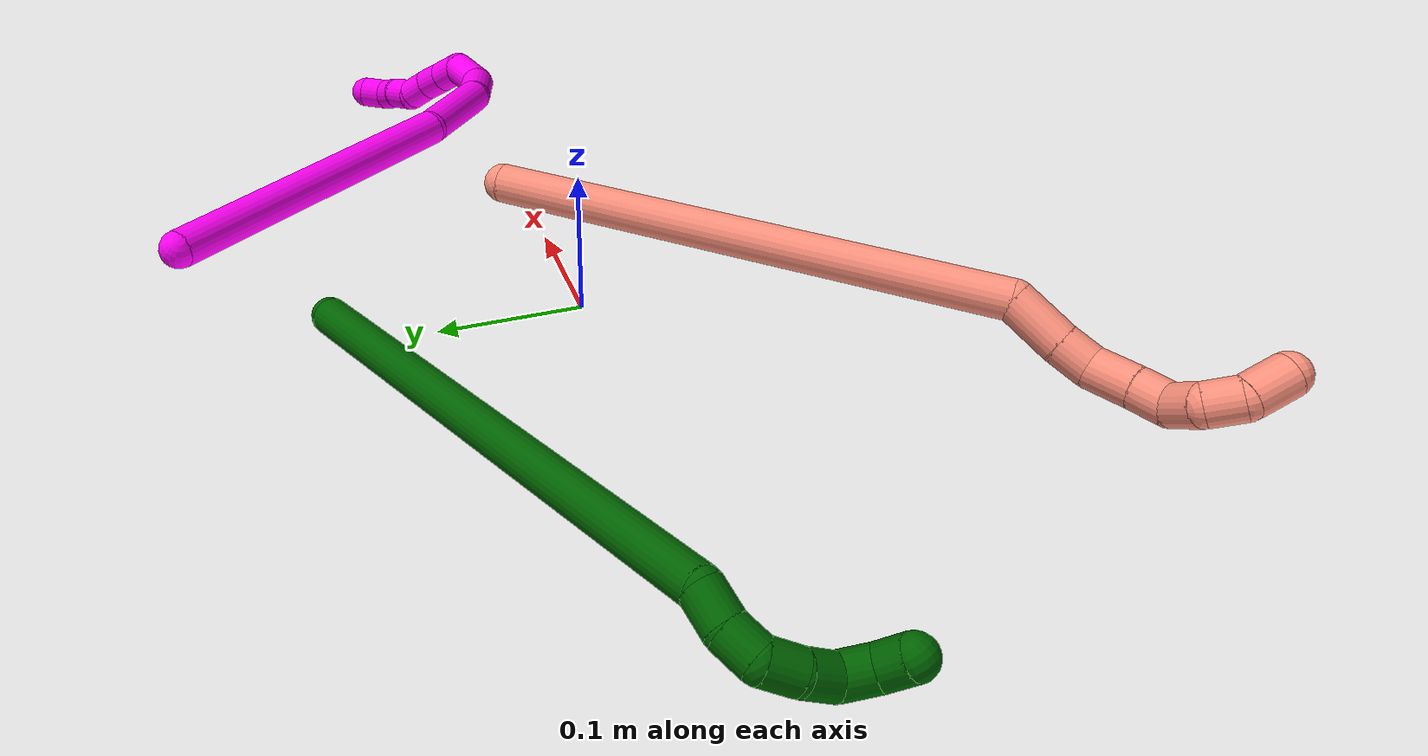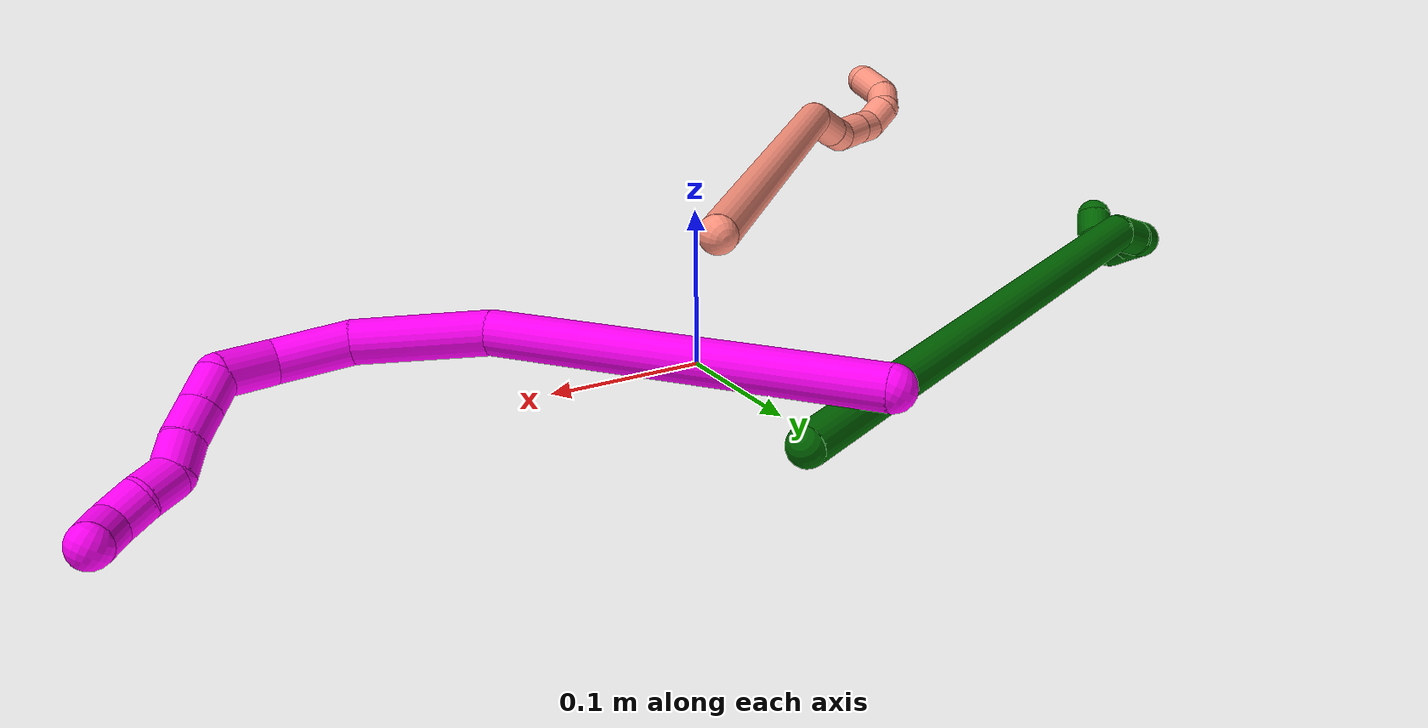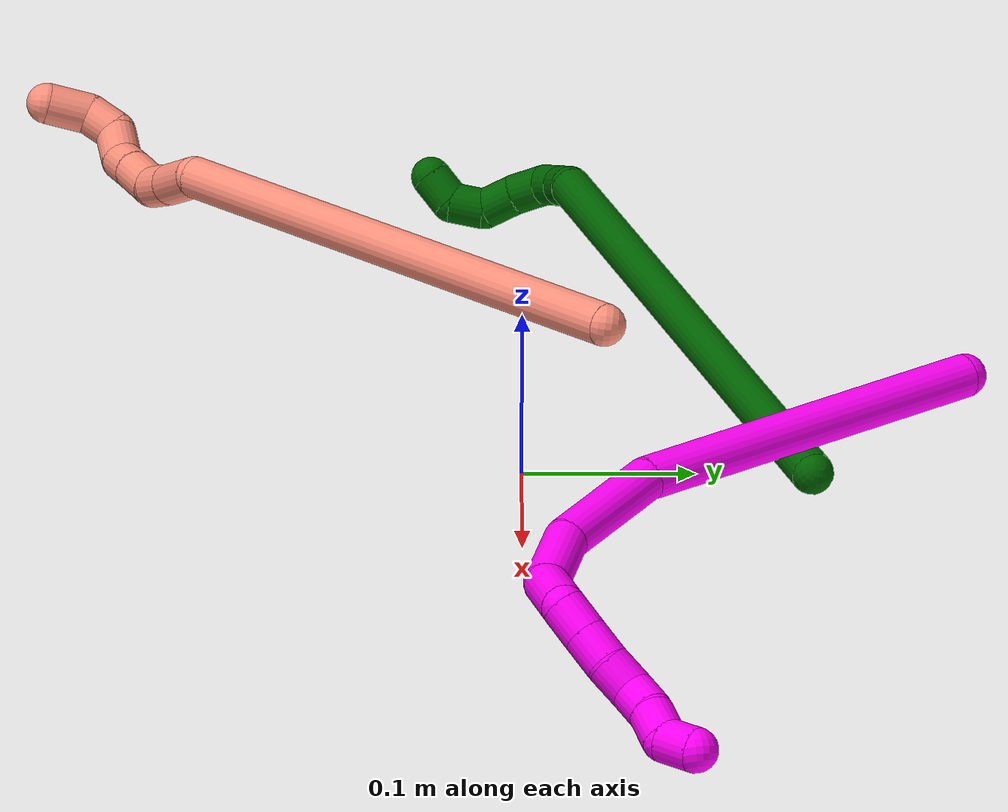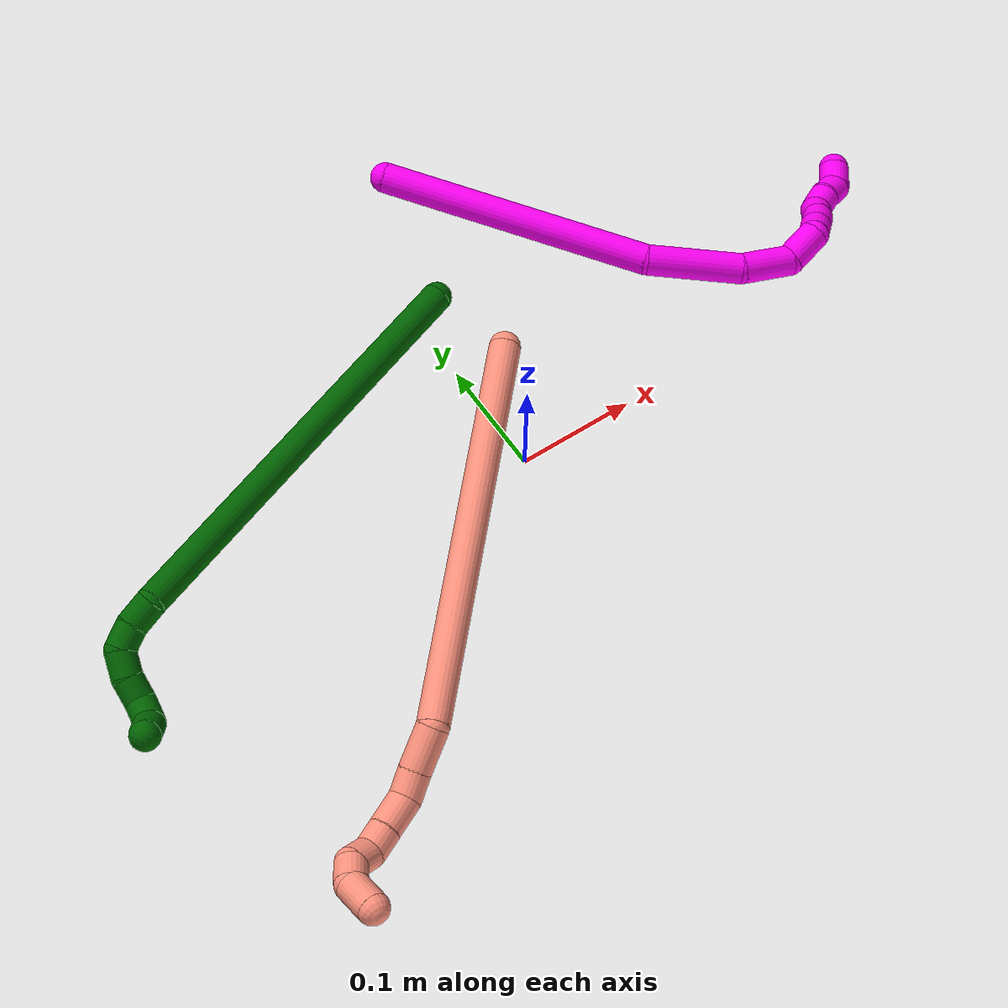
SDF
<sdf version="1.7">
 <world name="default">
  <model name="6">
   <static>0</static>
   <link name="6">
    <collision name="collision-cylinder-e_1_1_4">
     <pose>-0.144102 -0.014913 0.116569 0.127241 -0.886657 -0.060484</pose>
     <geometry><cylinder><radius>0.0125</radius><length>0.371892</length></cylinder></geometry>
     <surface>
      <friction><ode><mu>1.16</mu><mu2>1.16</mu2><slip1>0</slip1><slip2>0</slip2></ode></friction>
      <contact><ode><kp>1e+06</kp><kd>1</kd><max_vel>0</max_vel><min_depth>0.001</min_depth></ode></contact>
     </surface>
    </collision>
    <visual name="visual-cylinder-e_1_1_4">
     <pose>-0.144102 -0.014913 0.116569 0.127241 -0.886657 -0.060484</pose>
     <geometry><cylinder><radius>0.0125</radius><length>0.371892</length></cylinder></geometry>
     <material><ambient>0 0.392157 0.003922 1</ambient></material>
    </visual>
    <collision name="collision-cylinder-e_2_4_5">
     <pose>-0.292976 -0.032499 0.24343 0.254107 -0.421891 -0.054693</pose>
     <geometry><cylinder><radius>0.0125</radius><length>0.023311</length></cylinder></geometry>
     <surface>
      <friction><ode><mu>1.16</mu><mu2>1.16</mu2><slip1>0</slip1><slip2>0</slip2></ode></friction>
      <contact><ode><kp>1e+06</kp><kd>1</kd><max_vel>0</max_vel><min_depth>0.001</min_depth></ode></contact>
     </surface>
    </collision>
    <visual name="visual-cylinder-e_2_4_5">
     <pose>-0.292976 -0.032499 0.24343 0.254107 -0.421891 -0.054693</pose>
     <geometry><cylinder><radius>0.0125</radius><length>0.023311</length></cylinder></geometry>
     <material><ambient>0 0.392157 0.003922 1</ambient></material>
    </visual>
    <collision name="collision-cylinder-e_3_5_6">
     <pose>-0.30249 -0.034657 0.262899 -0.056086 -0.476268 0.013618</pose>
     <geometry><cylinder><radius>0.0125</radius><length>0.020685</length></cylinder></geometry>
     <surface>
      <friction><ode><mu>1.16</mu><mu2>1.16</mu2><slip1>0</slip1><slip2>0</slip2></ode></friction>
      <contact><ode><kp>1e+06</kp><kd>1</kd><max_vel>0</max_vel><min_depth>0.001</min_depth></ode></contact>
     </surface>
    </collision>
    <visual name="visual-cylinder-e_3_5_6">
     <pose>-0.30249 -0.034657 0.262899 -0.056086 -0.476268 0.013618</pose>
     <geometry><cylinder><radius>0.0125</radius><length>0.020685</length></cylinder></geometry>
     <material><ambient>0 0.392157 0.003922 1</ambient></material>
    </visual>
    <collision name="collision-cylinder-e_4_6_7">
     <pose>-0.30847 -0.027289 0.280246 -0.697874 -0.115619 0.042106</pose>
     <geometry><cylinder><radius>0.0125</radius><length>0.02147</length></cylinder></geometry>
     <surface>
      <friction><ode><mu>1.16</mu><mu2>1.16</mu2><slip1>0</slip1><slip2>0</slip2></ode></friction>
      <contact><ode><kp>1e+06</kp><kd>1</kd><max_vel>0</max_vel><min_depth>0.001</min_depth></ode></contact>
     </surface>
    </collision>
    <visual name="visual-cylinder-e_4_6_7">
     <pose>-0.30847 -0.027289 0.280246 -0.697874 -0.115619 0.042106</pose>
     <geometry><cylinder><radius>0.0125</radius><length>0.02147</length></cylinder></geometry>
     <material><ambient>0 0.392157 0.003922 1</ambient></material>
    </visual>
    <collision name="collision-cylinder-e_5_7_8">
     <pose>-0.308908 -0.012445 0.295192 -0.86759 0.076273 -0.035345</pose>
     <geometry><cylinder><radius>0.0125</radius><length>0.021016</length></cylinder></geometry>
     <surface>
      <friction><ode><mu>1.16</mu><mu2>1.16</mu2><slip1>0</slip1><slip2>0</slip2></ode></friction>
      <contact><ode><kp>1e+06</kp><kd>1</kd><max_vel>0</max_vel><min_depth>0.001</min_depth></ode></contact>
     </surface>
    </collision>
    <visual name="visual-cylinder-e_5_7_8">
     <pose>-0.308908 -0.012445 0.295192 -0.86759 0.076273 -0.035345</pose>
     <geometry><cylinder><radius>0.0125</radius><length>0.021016</length></cylinder></geometry>
     <material><ambient>0 0.392157 0.003922 1</ambient></material>
    </visual>
    <collision name="collision-cylinder-e_6_8_9">
     <pose>-0.313091 0.00405 0.305658 -1.16128 -0.493336 0.327443</pose>
     <geometry><cylinder><radius>0.0125</radius><length>0.021049</length></cylinder></geometry>
     <surface>
      <friction><ode><mu>1.16</mu><mu2>1.16</mu2><slip1>0</slip1><slip2>0</slip2></ode></friction>
      <contact><ode><kp>1e+06</kp><kd>1</kd><max_vel>0</max_vel><min_depth>0.001</min_depth></ode></contact>
     </surface>
    </collision>
    <visual name="visual-cylinder-e_6_8_9">
     <pose>-0.313091 0.00405 0.305658 -1.16128 -0.493336 0.327443</pose>
     <geometry><cylinder><radius>0.0125</radius><length>0.021049</length></cylinder></geometry>
     <material><ambient>0 0.392157 0.003922 1</ambient></material>
    </visual>
    <collision name="collision-cylinder-e_7_9_2">
     <pose>-0.327577 0.016462 0.3099 -1.4308 -1.17706 1.05112</pose>
     <geometry><cylinder><radius>0.0125</radius><length>0.020577</length></cylinder></geometry>
     <surface>
      <friction><ode><mu>1.16</mu><mu2>1.16</mu2><slip1>0</slip1><slip2>0</slip2></ode></friction>
      <contact><ode><kp>1e+06</kp><kd>1</kd><max_vel>0</max_vel><min_depth>0.001</min_depth></ode></contact>
     </surface>
    </collision>
    <visual name="visual-cylinder-e_7_9_2">
     <pose>-0.327577 0.016462 0.3099 -1.4308 -1.17706 1.05112</pose>
     <geometry><cylinder><radius>0.0125</radius><length>0.020577</length></cylinder></geometry>
     <material><ambient>0 0.392157 0.003922 1</ambient></material>
    </visual>
    <collision name="collision-sphere-2">
     <pose>-0.337078 0.02037 0.31045 0 -0 0</pose>
     <geometry><sphere><radius>0.0125</radius></sphere></geometry>
     <surface>
      <friction><ode><mu>1.16</mu><mu2>1.16</mu2><slip1>0</slip1><slip2>0</slip2></ode></friction>
      <contact><ode><kp>1e+06</kp><kd>1</kd><max_vel>0</max_vel><min_depth>0.001</min_depth></ode></contact>
     </surface>
    </collision>
    <visual name="visual-sphere-2">
     <pose>-0.337078 0.02037 0.31045 0 -0 0</pose>
     <geometry><sphere><radius>0.0125</radius></sphere></geometry>
     <material><ambient>0 0.392157 0.003922 1</ambient></material>
    </visual>
    <collision name="collision-sphere-9">
     <pose>-0.318075 0.012553 0.309349 0 -0 0</pose>
     <geometry><sphere><radius>0.0125</radius></sphere></geometry>
     <surface>
      <friction><ode><mu>1.16</mu><mu2>1.16</mu2><slip1>0</slip1><slip2>0</slip2></ode></friction>
      <contact><ode><kp>1e+06</kp><kd>1</kd><max_vel>0</max_vel><min_depth>0.001</min_depth></ode></contact>
     </surface>
    </collision>
    <visual name="visual-sphere-9">
     <pose>-0.318075 0.012553 0.309349 0 -0 0</pose>
     <geometry><sphere><radius>0.0125</radius></sphere></geometry>
     <material><ambient>0 0.392157 0.003922 1</ambient></material>
    </visual>
    <collision name="collision-sphere-4">
     <pose>-0.288203 -0.029826 0.233138 0 -0 0</pose>
     <geometry><sphere><radius>0.0125</radius></sphere></geometry>
     <surface>
      <friction><ode><mu>1.16</mu><mu2>1.16</mu2><slip1>0</slip1><slip2>0</slip2></ode></friction>
      <contact><ode><kp>1e+06</kp><kd>1</kd><max_vel>0</max_vel><min_depth>0.001</min_depth></ode></contact>
     </surface>
    </collision>
    <visual name="visual-sphere-4">
     <pose>-0.288203 -0.029826 0.233138 0 -0 0</pose>
     <geometry><sphere><radius>0.0125</radius></sphere></geometry>
     <material><ambient>0 0.392157 0.003922 1</ambient></material>
    </visual>
    <collision name="collision-sphere-1">
     <geometry><sphere><radius>0.0125</radius></sphere></geometry>
     <surface>
      <friction><ode><mu>1.16</mu><mu2>1.16</mu2><slip1>0</slip1><slip2>0</slip2></ode></friction>
      <contact><ode><kp>1e+06</kp><kd>1</kd><max_vel>0</max_vel><min_depth>0.001</min_depth></ode></contact>
     </surface>
    </collision>
    <visual name="visual-sphere-1">
     <geometry><sphere><radius>0.0125</radius></sphere></geometry>
     <material><ambient>0 0.392157 0.003922 1</ambient></material>
    </visual>
    <collision name="collision-sphere-8">
     <pose>-0.308107 -0.004453 0.301967 0 -0 0</pose>
     <geometry><sphere><radius>0.0125</radius></sphere></geometry>
     <surface>
      <friction><ode><mu>1.16</mu><mu2>1.16</mu2><slip1>0</slip1><slip2>0</slip2></ode></friction>
      <contact><ode><kp>1e+06</kp><kd>1</kd><max_vel>0</max_vel><min_depth>0.001</min_depth></ode></contact>
     </surface>
    </collision>
    <visual name="visual-sphere-8">
     <pose>-0.308107 -0.004453 0.301967 0 -0 0</pose>
     <geometry><sphere><radius>0.0125</radius></sphere></geometry>
     <material><ambient>0 0.392157 0.003922 1</ambient></material>
    </visual>
    <collision name="collision-sphere-5">
     <pose>-0.297748 -0.035172 0.253722 0 -0 0</pose>
     <geometry><sphere><radius>0.0125</radius></sphere></geometry>
     <surface>
      <friction><ode><mu>1.16</mu><mu2>1.16</mu2><slip1>0</slip1><slip2>0</slip2></ode></friction>
      <contact><ode><kp>1e+06</kp><kd>1</kd><max_vel>0</max_vel><min_depth>0.001</min_depth></ode></contact>
     </surface>
    </collision>
    <visual name="visual-sphere-5">
     <pose>-0.297748 -0.035172 0.253722 0 -0 0</pose>
     <geometry><sphere><radius>0.0125</radius></sphere></geometry>
     <material><ambient>0 0.392157 0.003922 1</ambient></material>
    </visual>
    <collision name="collision-sphere-6">
     <pose>-0.307232 -0.034141 0.272076 0 -0 0</pose>
     <geometry><sphere><radius>0.0125</radius></sphere></geometry>
     <surface>
      <friction><ode><mu>1.16</mu><mu2>1.16</mu2><slip1>0</slip1><slip2>0</slip2></ode></friction>
      <contact><ode><kp>1e+06</kp><kd>1</kd><max_vel>0</max_vel><min_depth>0.001</min_depth></ode></contact>
     </surface>
    </collision>
    <visual name="visual-sphere-6">
     <pose>-0.307232 -0.034141 0.272076 0 -0 0</pose>
     <geometry><sphere><radius>0.0125</radius></sphere></geometry>
     <material><ambient>0 0.392157 0.003922 1</ambient></material>
    </visual>
    <collision name="collision-sphere-7">
     <pose>-0.309708 -0.020437 0.288416 0 -0 0</pose>
     <geometry><sphere><radius>0.0125</radius></sphere></geometry>
     <surface>
      <friction><ode><mu>1.16</mu><mu2>1.16</mu2><slip1>0</slip1><slip2>0</slip2></ode></friction>
      <contact><ode><kp>1e+06</kp><kd>1</kd><max_vel>0</max_vel><min_depth>0.001</min_depth></ode></contact>
     </surface>
    </collision>
    <visual name="visual-sphere-7">
     <pose>-0.309708 -0.020437 0.288416 0 -0 0</pose>
     <geometry><sphere><radius>0.0125</radius></sphere></geometry>
     <material><ambient>0 0.392157 0.003922 1</ambient></material>
    </visual>
    <inertial>
     <pose>-0.186245 -0.014888 0.15899 0 -0 0</pose>
     <mass>0.5</mass>
     <inertia>
      <ixx>0.002531</ixx>
      <ixy>0</ixy>
      <ixz>0</ixz>
      <iyy>0.00413</iyy>
      <iyz>0</iyz>
      <izz>0.003702</izz>
     </inertia>
    </inertial>
   </link>
   <pose>0.024101 0.166191 0.011786 3.04409 0.775253 0.393245</pose>
  </model>
  <model name="10">
   <static>0</static>
   <link name="10">
    <collision name="collision-cylinder-e_1_1_4">
     <pose>0.081956 -0.073114 -0.0269 1.92334 0.810731 1.10295</pose>
     <geometry><cylinder><radius>0.0125</radius><length>0.226151</length></cylinder></geometry>
     <surface>
      <friction><ode><mu>1.16</mu><mu2>1.16</mu2><slip1>0</slip1><slip2>0</slip2></ode></friction>
      <contact><ode><kp>1e+06</kp><kd>1</kd><max_vel>0</max_vel><min_depth>0.001</min_depth></ode></contact>
     </surface>
    </collision>
    <visual name="visual-cylinder-e_1_1_4">
     <pose>0.081956 -0.073114 -0.0269 1.92334 0.810731 1.10295</pose>
     <geometry><cylinder><radius>0.0125</radius><length>0.226151</length></cylinder></geometry>
     <material><ambient>1 0 0.964706 1</ambient></material>
    </visual>
    <collision name="collision-cylinder-e_2_4_5">
     <pose>0.194216 -0.162171 -0.071549 2.40979 0.903831 1.8052</pose>
     <geometry><cylinder><radius>0.0125</radius><length>0.077138</length></cylinder></geometry>
     <surface>
      <friction><ode><mu>1.16</mu><mu2>1.16</mu2><slip1>0</slip1><slip2>0</slip2></ode></friction>
      <contact><ode><kp>1e+06</kp><kd>1</kd><max_vel>0</max_vel><min_depth>0.001</min_depth></ode></contact>
     </surface>
    </collision>
    <visual name="visual-cylinder-e_2_4_5">
     <pose>0.194216 -0.162171 -0.071549 2.40979 0.903831 1.8052</pose>
     <geometry><cylinder><radius>0.0125</radius><length>0.077138</length></cylinder></geometry>
     <material><ambient>1 0 0.964706 1</ambient></material>
    </visual>
    <collision name="collision-cylinder-e_3_5_6">
     <pose>0.240952 -0.180199 -0.102941 2.98991 0.872278 2.81835</pose>
     <geometry><cylinder><radius>0.0125</radius><length>0.042918</length></cylinder></geometry>
     <surface>
      <friction><ode><mu>1.16</mu><mu2>1.16</mu2><slip1>0</slip1><slip2>0</slip2></ode></friction>
      <contact><ode><kp>1e+06</kp><kd>1</kd><max_vel>0</max_vel><min_depth>0.001</min_depth></ode></contact>
     </surface>
    </collision>
    <visual name="visual-cylinder-e_3_5_6">
     <pose>0.240952 -0.180199 -0.102941 2.98991 0.872278 2.81835</pose>
     <geometry><cylinder><radius>0.0125</radius><length>0.042918</length></cylinder></geometry>
     <material><ambient>1 0 0.964706 1</ambient></material>
    </visual>
    <collision name="collision-cylinder-e_4_6_7">
     <pose>0.26891 -0.174741 -0.125369 -2.43219 0.783018 -1.67911</pose>
     <geometry><cylinder><radius>0.0125</radius><length>0.032675</length></cylinder></geometry>
     <surface>
      <friction><ode><mu>1.16</mu><mu2>1.16</mu2><slip1>0</slip1><slip2>0</slip2></ode></friction>
      <contact><ode><kp>1e+06</kp><kd>1</kd><max_vel>0</max_vel><min_depth>0.001</min_depth></ode></contact>
     </surface>
    </collision>
    <visual name="visual-cylinder-e_4_6_7">
     <pose>0.26891 -0.174741 -0.125369 -2.43219 0.783018 -1.67911</pose>
     <geometry><cylinder><radius>0.0125</radius><length>0.032675</length></cylinder></geometry>
     <material><ambient>1 0 0.964706 1</ambient></material>
    </visual>
    <collision name="collision-cylinder-e_5_7_8">
     <pose>0.280815 -0.161945 -0.143035 -2.60734 0.036765 -0.134156</pose>
     <geometry><cylinder><radius>0.0125</radius><length>0.020649</length></cylinder></geometry>
     <surface>
      <friction><ode><mu>1.16</mu><mu2>1.16</mu2><slip1>0</slip1><slip2>0</slip2></ode></friction>
      <contact><ode><kp>1e+06</kp><kd>1</kd><max_vel>0</max_vel><min_depth>0.001</min_depth></ode></contact>
     </surface>
    </collision>
    <visual name="visual-cylinder-e_5_7_8">
     <pose>0.280815 -0.161945 -0.143035 -2.60734 0.036765 -0.134156</pose>
     <geometry><cylinder><radius>0.0125</radius><length>0.020649</length></cylinder></geometry>
     <material><ambient>1 0 0.964706 1</ambient></material>
    </visual>
    <collision name="collision-cylinder-e_6_8_9">
     <pose>0.281588 -0.151465 -0.16056 -2.59789 0.038942 -0.139489</pose>
     <geometry><cylinder><radius>0.0125</radius><length>0.020221</length></cylinder></geometry>
     <surface>
      <friction><ode><mu>1.16</mu><mu2>1.16</mu2><slip1>0</slip1><slip2>0</slip2></ode></friction>
      <contact><ode><kp>1e+06</kp><kd>1</kd><max_vel>0</max_vel><min_depth>0.001</min_depth></ode></contact>
     </surface>
    </collision>
    <visual name="visual-cylinder-e_6_8_9">
     <pose>0.281588 -0.151465 -0.16056 -2.59789 0.038942 -0.139489</pose>
     <geometry><cylinder><radius>0.0125</radius><length>0.020221</length></cylinder></geometry>
     <material><ambient>1 0 0.964706 1</ambient></material>
    </visual>
    <collision name="collision-cylinder-e_7_9_10">
     <pose>0.280681 -0.140694 -0.177508 -2.55277 -0.129499 0.421329</pose>
     <geometry><cylinder><radius>0.0125</radius><length>0.020135</length></cylinder></geometry>
     <surface>
      <friction><ode><mu>1.16</mu><mu2>1.16</mu2><slip1>0</slip1><slip2>0</slip2></ode></friction>
      <contact><ode><kp>1e+06</kp><kd>1</kd><max_vel>0</max_vel><min_depth>0.001</min_depth></ode></contact>
     </surface>
    </collision>
    <visual name="visual-cylinder-e_7_9_10">
     <pose>0.280681 -0.140694 -0.177508 -2.55277 -0.129499 0.421329</pose>
     <geometry><cylinder><radius>0.0125</radius><length>0.020135</length></cylinder></geometry>
     <material><ambient>1 0 0.964706 1</ambient></material>
    </visual>
    <collision name="collision-cylinder-e_8_10_11">
     <pose>0.283683 -0.129492 -0.19292 -2.46942 0.442112 -1.1433</pose>
     <geometry><cylinder><radius>0.0125</radius><length>0.020107</length></cylinder></geometry>
     <surface>
      <friction><ode><mu>1.16</mu><mu2>1.16</mu2><slip1>0</slip1><slip2>0</slip2></ode></friction>
      <contact><ode><kp>1e+06</kp><kd>1</kd><max_vel>0</max_vel><min_depth>0.001</min_depth></ode></contact>
     </surface>
    </collision>
    <visual name="visual-cylinder-e_8_10_11">
     <pose>0.283683 -0.129492 -0.19292 -2.46942 0.442112 -1.1433</pose>
     <geometry><cylinder><radius>0.0125</radius><length>0.020107</length></cylinder></geometry>
     <material><ambient>1 0 0.964706 1</ambient></material>
    </visual>
    <collision name="collision-cylinder-e_9_11_12">
     <pose>0.291829 -0.119916 -0.20839 -2.7034 0.394602 -1.46313</pose>
     <geometry><cylinder><radius>0.0125</radius><length>0.020002</length></cylinder></geometry>
     <surface>
      <friction><ode><mu>1.16</mu><mu2>1.16</mu2><slip1>0</slip1><slip2>0</slip2></ode></friction>
      <contact><ode><kp>1e+06</kp><kd>1</kd><max_vel>0</max_vel><min_depth>0.001</min_depth></ode></contact>
     </surface>
    </collision>
    <visual name="visual-cylinder-e_9_11_12">
     <pose>0.291829 -0.119916 -0.20839 -2.7034 0.394602 -1.46313</pose>
     <geometry><cylinder><radius>0.0125</radius><length>0.020002</length></cylinder></geometry>
     <material><ambient>1 0 0.964706 1</ambient></material>
    </visual>
    <collision name="collision-cylinder-e_10_12_2">
     <pose>0.297699 -0.107232 -0.221121 -2.03332 0.203883 -0.327658</pose>
     <geometry><cylinder><radius>0.0125</radius><length>0.020006</length></cylinder></geometry>
     <surface>
      <friction><ode><mu>1.16</mu><mu2>1.16</mu2><slip1>0</slip1><slip2>0</slip2></ode></friction>
      <contact><ode><kp>1e+06</kp><kd>1</kd><max_vel>0</max_vel><min_depth>0.001</min_depth></ode></contact>
     </surface>
    </collision>
    <visual name="visual-cylinder-e_10_12_2">
     <pose>0.297699 -0.107232 -0.221121 -2.03332 0.203883 -0.327658</pose>
     <geometry><cylinder><radius>0.0125</radius><length>0.020006</length></cylinder></geometry>
     <material><ambient>1 0 0.964706 1</ambient></material>
    </visual>
    <collision name="collision-sphere-2">
     <pose>0.299724 -0.098465 -0.225492 0 -0 0</pose>
     <geometry><sphere><radius>0.0125</radius></sphere></geometry>
     <surface>
      <friction><ode><mu>1.16</mu><mu2>1.16</mu2><slip1>0</slip1><slip2>0</slip2></ode></friction>
      <contact><ode><kp>1e+06</kp><kd>1</kd><max_vel>0</max_vel><min_depth>0.001</min_depth></ode></contact>
     </surface>
    </collision>
    <visual name="visual-sphere-2">
     <pose>0.299724 -0.098465 -0.225492 0 -0 0</pose>
     <geometry><sphere><radius>0.0125</radius></sphere></geometry>
     <material><ambient>1 0 0.964706 1</ambient></material>
    </visual>
    <collision name="collision-sphere-12">
     <pose>0.295673 -0.115999 -0.21675 0 -0 0</pose>
     <geometry><sphere><radius>0.0125</radius></sphere></geometry>
     <surface>
      <friction><ode><mu>1.16</mu><mu2>1.16</mu2><slip1>0</slip1><slip2>0</slip2></ode></friction>
      <contact><ode><kp>1e+06</kp><kd>1</kd><max_vel>0</max_vel><min_depth>0.001</min_depth></ode></contact>
     </surface>
    </collision>
    <visual name="visual-sphere-12">
     <pose>0.295673 -0.115999 -0.21675 0 -0 0</pose>
     <geometry><sphere><radius>0.0125</radius></sphere></geometry>
     <material><ambient>1 0 0.964706 1</ambient></material>
    </visual>
    <collision name="collision-sphere-11">
     <pose>0.287984 -0.123833 -0.20003 0 -0 0</pose>
     <geometry><sphere><radius>0.0125</radius></sphere></geometry>
     <surface>
      <friction><ode><mu>1.16</mu><mu2>1.16</mu2><slip1>0</slip1><slip2>0</slip2></ode></friction>
      <contact><ode><kp>1e+06</kp><kd>1</kd><max_vel>0</max_vel><min_depth>0.001</min_depth></ode></contact>
     </surface>
    </collision>
    <visual name="visual-sphere-11">
     <pose>0.287984 -0.123833 -0.20003 0 -0 0</pose>
     <geometry><sphere><radius>0.0125</radius></sphere></geometry>
     <material><ambient>1 0 0.964706 1</ambient></material>
    </visual>
    <collision name="collision-sphere-10">
     <pose>0.279381 -0.13515 -0.18581 0 -0 0</pose>
     <geometry><sphere><radius>0.0125</radius></sphere></geometry>
     <surface>
      <friction><ode><mu>1.16</mu><mu2>1.16</mu2><slip1>0</slip1><slip2>0</slip2></ode></friction>
      <contact><ode><kp>1e+06</kp><kd>1</kd><max_vel>0</max_vel><min_depth>0.001</min_depth></ode></contact>
     </surface>
    </collision>
    <visual name="visual-sphere-10">
     <pose>0.279381 -0.13515 -0.18581 0 -0 0</pose>
     <geometry><sphere><radius>0.0125</radius></sphere></geometry>
     <material><ambient>1 0 0.964706 1</ambient></material>
    </visual>
    <collision name="collision-sphere-9">
     <pose>0.281981 -0.146239 -0.169206 0 -0 0</pose>
     <geometry><sphere><radius>0.0125</radius></sphere></geometry>
     <surface>
      <friction><ode><mu>1.16</mu><mu2>1.16</mu2><slip1>0</slip1><slip2>0</slip2></ode></friction>
      <contact><ode><kp>1e+06</kp><kd>1</kd><max_vel>0</max_vel><min_depth>0.001</min_depth></ode></contact>
     </surface>
    </collision>
    <visual name="visual-sphere-9">
     <pose>0.281981 -0.146239 -0.169206 0 -0 0</pose>
     <geometry><sphere><radius>0.0125</radius></sphere></geometry>
     <material><ambient>1 0 0.964706 1</ambient></material>
    </visual>
    <collision name="collision-sphere-4">
     <pose>0.163912 -0.146228 -0.053799 0 -0 0</pose>
     <geometry><sphere><radius>0.0125</radius></sphere></geometry>
     <surface>
      <friction><ode><mu>1.16</mu><mu2>1.16</mu2><slip1>0</slip1><slip2>0</slip2></ode></friction>
      <contact><ode><kp>1e+06</kp><kd>1</kd><max_vel>0</max_vel><min_depth>0.001</min_depth></ode></contact>
     </surface>
    </collision>
    <visual name="visual-sphere-4">
     <pose>0.163912 -0.146228 -0.053799 0 -0 0</pose>
     <geometry><sphere><radius>0.0125</radius></sphere></geometry>
     <material><ambient>1 0 0.964706 1</ambient></material>
    </visual>
    <collision name="collision-sphere-1">
     <geometry><sphere><radius>0.0125</radius></sphere></geometry>
     <surface>
      <friction><ode><mu>1.16</mu><mu2>1.16</mu2><slip1>0</slip1><slip2>0</slip2></ode></friction>
      <contact><ode><kp>1e+06</kp><kd>1</kd><max_vel>0</max_vel><min_depth>0.001</min_depth></ode></contact>
     </surface>
    </collision>
    <visual name="visual-sphere-1">
     <geometry><sphere><radius>0.0125</radius></sphere></geometry>
     <material><ambient>1 0 0.964706 1</ambient></material>
    </visual>
    <collision name="collision-sphere-8">
     <pose>0.281194 -0.156691 -0.151914 0 -0 0</pose>
     <geometry><sphere><radius>0.0125</radius></sphere></geometry>
     <surface>
      <friction><ode><mu>1.16</mu><mu2>1.16</mu2><slip1>0</slip1><slip2>0</slip2></ode></friction>
      <contact><ode><kp>1e+06</kp><kd>1</kd><max_vel>0</max_vel><min_depth>0.001</min_depth></ode></contact>
     </surface>
    </collision>
    <visual name="visual-sphere-8">
     <pose>0.281194 -0.156691 -0.151914 0 -0 0</pose>
     <geometry><sphere><radius>0.0125</radius></sphere></geometry>
     <material><ambient>1 0 0.964706 1</ambient></material>
    </visual>
    <collision name="collision-sphere-5">
     <pose>0.224519 -0.178113 -0.0893 0 -0 0</pose>
     <geometry><sphere><radius>0.0125</radius></sphere></geometry>
     <surface>
      <friction><ode><mu>1.16</mu><mu2>1.16</mu2><slip1>0</slip1><slip2>0</slip2></ode></friction>
      <contact><ode><kp>1e+06</kp><kd>1</kd><max_vel>0</max_vel><min_depth>0.001</min_depth></ode></contact>
     </surface>
    </collision>
    <visual name="visual-sphere-5">
     <pose>0.224519 -0.178113 -0.0893 0 -0 0</pose>
     <geometry><sphere><radius>0.0125</radius></sphere></geometry>
     <material><ambient>1 0 0.964706 1</ambient></material>
    </visual>
    <collision name="collision-sphere-6">
     <pose>0.257386 -0.182284 -0.116583 0 -0 0</pose>
     <geometry><sphere><radius>0.0125</radius></sphere></geometry>
     <surface>
      <friction><ode><mu>1.16</mu><mu2>1.16</mu2><slip1>0</slip1><slip2>0</slip2></ode></friction>
      <contact><ode><kp>1e+06</kp><kd>1</kd><max_vel>0</max_vel><min_depth>0.001</min_depth></ode></contact>
     </surface>
    </collision>
    <visual name="visual-sphere-6">
     <pose>0.257386 -0.182284 -0.116583 0 -0 0</pose>
     <geometry><sphere><radius>0.0125</radius></sphere></geometry>
     <material><ambient>1 0 0.964706 1</ambient></material>
    </visual>
    <collision name="collision-sphere-7">
     <pose>0.280435 -0.167198 -0.134155 0 -0 0</pose>
     <geometry><sphere><radius>0.0125</radius></sphere></geometry>
     <surface>
      <friction><ode><mu>1.16</mu><mu2>1.16</mu2><slip1>0</slip1><slip2>0</slip2></ode></friction>
      <contact><ode><kp>1e+06</kp><kd>1</kd><max_vel>0</max_vel><min_depth>0.001</min_depth></ode></contact>
     </surface>
    </collision>
    <visual name="visual-sphere-7">
     <pose>0.280435 -0.167198 -0.134155 0 -0 0</pose>
     <geometry><sphere><radius>0.0125</radius></sphere></geometry>
     <material><ambient>1 0 0.964706 1</ambient></material>
    </visual>
    <inertial>
     <pose>0.174568 -0.117749 -0.084724 0 -0 0</pose>
     <mass>0.5</mass>
     <inertia>
      <ixx>0.00094</ixx>
      <ixy>0</ixy>
      <ixz>0</ixz>
      <iyy>0.001085</iyy>
      <iyz>0</iyz>
      <izz>-0.000126</izz>
     </inertia>
    </inertial>
   </link>
   <pose>0.030195 0.251446 0.075528 0.330111 -0.522552 -0.380185</pose>
  </model>
  <model name="16">
   <static>0</static>
   <link name="16">
    <collision name="collision-cylinder-e_1_1_4">
     <pose>-0.092249 -0.064596 0.119591 0.495243 -0.596284 -0.155066</pose>
     <geometry><cylinder><radius>0.0125</radius><length>0.328539</length></cylinder></geometry>
     <surface>
      <friction><ode><mu>1.16</mu><mu2>1.16</mu2><slip1>0</slip1><slip2>0</slip2></ode></friction>
      <contact><ode><kp>1e+06</kp><kd>1</kd><max_vel>0</max_vel><min_depth>0.001</min_depth></ode></contact>
     </surface>
    </collision>
    <visual name="visual-cylinder-e_1_1_4">
     <pose>-0.092249 -0.064596 0.119591 0.495243 -0.596284 -0.155066</pose>
     <geometry><cylinder><radius>0.0125</radius><length>0.328539</length></cylinder></geometry>
     <material><ambient>1 0.576471 0.494118 1</ambient></material>
    </visual>
    <collision name="collision-cylinder-e_2_4_5">
     <pose>-0.192279 -0.142854 0.246038 1.10566 -0.470809 -0.293846</pose>
     <geometry><cylinder><radius>0.0125</radius><length>0.034304</length></cylinder></geometry>
     <surface>
      <friction><ode><mu>1.16</mu><mu2>1.16</mu2><slip1>0</slip1><slip2>0</slip2></ode></friction>
      <contact><ode><kp>1e+06</kp><kd>1</kd><max_vel>0</max_vel><min_depth>0.001</min_depth></ode></contact>
     </surface>
    </collision>
    <visual name="visual-cylinder-e_2_4_5">
     <pose>-0.192279 -0.142854 0.246038 1.10566 -0.470809 -0.293846</pose>
     <geometry><cylinder><radius>0.0125</radius><length>0.034304</length></cylinder></geometry>
     <material><ambient>1 0.576471 0.494118 1</ambient></material>
    </visual>
    <collision name="collision-cylinder-e_3_5_6">
     <pose>-0.204955 -0.16428 0.257911 0.997167 -0.487139 -0.268969</pose>
     <geometry><cylinder><radius>0.0125</radius><length>0.020921</length></cylinder></geometry>
     <surface>
      <friction><ode><mu>1.16</mu><mu2>1.16</mu2><slip1>0</slip1><slip2>0</slip2></ode></friction>
      <contact><ode><kp>1e+06</kp><kd>1</kd><max_vel>0</max_vel><min_depth>0.001</min_depth></ode></contact>
     </surface>
    </collision>
    <visual name="visual-cylinder-e_3_5_6">
     <pose>-0.204955 -0.16428 0.257911 0.997167 -0.487139 -0.268969</pose>
     <geometry><cylinder><radius>0.0125</radius><length>0.020921</length></cylinder></geometry>
     <material><ambient>1 0.576471 0.494118 1</ambient></material>
    </visual>
    <collision name="collision-cylinder-e_4_6_7">
     <pose>-0.220652 -0.178107 0.26889 0.79371 -0.903781 -0.401368</pose>
     <geometry><cylinder><radius>0.0125</radius><length>0.027494</length></cylinder></geometry>
     <surface>
      <friction><ode><mu>1.16</mu><mu2>1.16</mu2><slip1>0</slip1><slip2>0</slip2></ode></friction>
      <contact><ode><kp>1e+06</kp><kd>1</kd><max_vel>0</max_vel><min_depth>0.001</min_depth></ode></contact>
     </surface>
    </collision>
    <visual name="visual-cylinder-e_4_6_7">
     <pose>-0.220652 -0.178107 0.26889 0.79371 -0.903781 -0.401368</pose>
     <geometry><cylinder><radius>0.0125</radius><length>0.027494</length></cylinder></geometry>
     <material><ambient>1 0.576471 0.494118 1</ambient></material>
    </visual>
    <collision name="collision-cylinder-e_5_7_8">
     <pose>-0.239223 -0.188988 0.279081 0.850616 -0.881048 -0.420745</pose>
     <geometry><cylinder><radius>0.0125</radius><length>0.020144</length></cylinder></geometry>
     <surface>
      <friction><ode><mu>1.16</mu><mu2>1.16</mu2><slip1>0</slip1><slip2>0</slip2></ode></friction>
      <contact><ode><kp>1e+06</kp><kd>1</kd><max_vel>0</max_vel><min_depth>0.001</min_depth></ode></contact>
     </surface>
    </collision>
    <visual name="visual-cylinder-e_5_7_8">
     <pose>-0.239223 -0.188988 0.279081 0.850616 -0.881048 -0.420745</pose>
     <geometry><cylinder><radius>0.0125</radius><length>0.020144</length></cylinder></geometry>
     <material><ambient>1 0.576471 0.494118 1</ambient></material>
    </visual>
    <collision name="collision-cylinder-e_6_8_9">
     <pose>-0.25718 -0.192754 0.286293 -0.338739 -1.26956 0.250561</pose>
     <geometry><cylinder><radius>0.0125</radius><length>0.021337</length></cylinder></geometry>
     <surface>
      <friction><ode><mu>1.16</mu><mu2>1.16</mu2><slip1>0</slip1><slip2>0</slip2></ode></friction>
      <contact><ode><kp>1e+06</kp><kd>1</kd><max_vel>0</max_vel><min_depth>0.001</min_depth></ode></contact>
     </surface>
    </collision>
    <visual name="visual-cylinder-e_6_8_9">
     <pose>-0.25718 -0.192754 0.286293 -0.338739 -1.26956 0.250561</pose>
     <geometry><cylinder><radius>0.0125</radius><length>0.021337</length></cylinder></geometry>
     <material><ambient>1 0.576471 0.494118 1</ambient></material>
    </visual>
    <collision name="collision-cylinder-e_7_9_10">
     <pose>-0.272989 -0.191445 0.297841 -0.029958 -0.580729 0.008952</pose>
     <geometry><cylinder><radius>0.0125</radius><length>0.020491</length></cylinder></geometry>
     <surface>
      <friction><ode><mu>1.16</mu><mu2>1.16</mu2><slip1>0</slip1><slip2>0</slip2></ode></friction>
      <contact><ode><kp>1e+06</kp><kd>1</kd><max_vel>0</max_vel><min_depth>0.001</min_depth></ode></contact>
     </surface>
    </collision>
    <visual name="visual-cylinder-e_7_9_10">
     <pose>-0.272989 -0.191445 0.297841 -0.029958 -0.580729 0.008952</pose>
     <geometry><cylinder><radius>0.0125</radius><length>0.020491</length></cylinder></geometry>
     <material><ambient>1 0.576471 0.494118 1</ambient></material>
    </visual>
    <collision name="collision-cylinder-e_8_10_2">
     <pose>-0.278646 -0.188833 0.319579 -0.176914 -0.002725 0.000242</pose>
     <geometry><cylinder><radius>0.0125</radius><length>0.026771</length></cylinder></geometry>
     <surface>
      <friction><ode><mu>1.16</mu><mu2>1.16</mu2><slip1>0</slip1><slip2>0</slip2></ode></friction>
      <contact><ode><kp>1e+06</kp><kd>1</kd><max_vel>0</max_vel><min_depth>0.001</min_depth></ode></contact>
     </surface>
    </collision>
    <visual name="visual-cylinder-e_8_10_2">
     <pose>-0.278646 -0.188833 0.319579 -0.176914 -0.002725 0.000242</pose>
     <geometry><cylinder><radius>0.0125</radius><length>0.026771</length></cylinder></geometry>
     <material><ambient>1 0.576471 0.494118 1</ambient></material>
    </visual>
    <collision name="collision-sphere-2">
     <pose>-0.278683 -0.186477 0.332756 0 -0 0</pose>
     <geometry><sphere><radius>0.0125</radius></sphere></geometry>
     <surface>
      <friction><ode><mu>1.16</mu><mu2>1.16</mu2><slip1>0</slip1><slip2>0</slip2></ode></friction>
      <contact><ode><kp>1e+06</kp><kd>1</kd><max_vel>0</max_vel><min_depth>0.001</min_depth></ode></contact>
     </surface>
    </collision>
    <visual name="visual-sphere-2">
     <pose>-0.278683 -0.186477 0.332756 0 -0 0</pose>
     <geometry><sphere><radius>0.0125</radius></sphere></geometry>
     <material><ambient>1 0.576471 0.494118 1</ambient></material>
    </visual>
    <collision name="collision-sphere-10">
     <pose>-0.27861 -0.191189 0.306402 0 -0 0</pose>
     <geometry><sphere><radius>0.0125</radius></sphere></geometry>
     <surface>
      <friction><ode><mu>1.16</mu><mu2>1.16</mu2><slip1>0</slip1><slip2>0</slip2></ode></friction>
      <contact><ode><kp>1e+06</kp><kd>1</kd><max_vel>0</max_vel><min_depth>0.001</min_depth></ode></contact>
     </surface>
    </collision>
    <visual name="visual-sphere-10">
     <pose>-0.27861 -0.191189 0.306402 0 -0 0</pose>
     <geometry><sphere><radius>0.0125</radius></sphere></geometry>
     <material><ambient>1 0.576471 0.494118 1</ambient></material>
    </visual>
    <collision name="collision-sphere-9">
     <pose>-0.267368 -0.191702 0.289279 0 -0 0</pose>
     <geometry><sphere><radius>0.0125</radius></sphere></geometry>
     <surface>
      <friction><ode><mu>1.16</mu><mu2>1.16</mu2><slip1>0</slip1><slip2>0</slip2></ode></friction>
      <contact><ode><kp>1e+06</kp><kd>1</kd><max_vel>0</max_vel><min_depth>0.001</min_depth></ode></contact>
     </surface>
    </collision>
    <visual name="visual-sphere-9">
     <pose>-0.267368 -0.191702 0.289279 0 -0 0</pose>
     <geometry><sphere><radius>0.0125</radius></sphere></geometry>
     <material><ambient>1 0.576471 0.494118 1</ambient></material>
    </visual>
    <collision name="collision-sphere-4">
     <pose>-0.184498 -0.129192 0.239181 0 -0 0</pose>
     <geometry><sphere><radius>0.0125</radius></sphere></geometry>
     <surface>
      <friction><ode><mu>1.16</mu><mu2>1.16</mu2><slip1>0</slip1><slip2>0</slip2></ode></friction>
      <contact><ode><kp>1e+06</kp><kd>1</kd><max_vel>0</max_vel><min_depth>0.001</min_depth></ode></contact>
     </surface>
    </collision>
    <visual name="visual-sphere-4">
     <pose>-0.184498 -0.129192 0.239181 0 -0 0</pose>
     <geometry><sphere><radius>0.0125</radius></sphere></geometry>
     <material><ambient>1 0.576471 0.494118 1</ambient></material>
    </visual>
    <collision name="collision-sphere-1">
     <geometry><sphere><radius>0.0125</radius></sphere></geometry>
     <surface>
      <friction><ode><mu>1.16</mu><mu2>1.16</mu2><slip1>0</slip1><slip2>0</slip2></ode></friction>
      <contact><ode><kp>1e+06</kp><kd>1</kd><max_vel>0</max_vel><min_depth>0.001</min_depth></ode></contact>
     </surface>
    </collision>
    <visual name="visual-sphere-1">
     <geometry><sphere><radius>0.0125</radius></sphere></geometry>
     <material><ambient>1 0.576471 0.494118 1</ambient></material>
    </visual>
    <collision name="collision-sphere-8">
     <pose>-0.246992 -0.193806 0.283308 0 -0 0</pose>
     <geometry><sphere><radius>0.0125</radius></sphere></geometry>
     <surface>
      <friction><ode><mu>1.16</mu><mu2>1.16</mu2><slip1>0</slip1><slip2>0</slip2></ode></friction>
      <contact><ode><kp>1e+06</kp><kd>1</kd><max_vel>0</max_vel><min_depth>0.001</min_depth></ode></contact>
     </surface>
    </collision>
    <visual name="visual-sphere-8">
     <pose>-0.246992 -0.193806 0.283308 0 -0 0</pose>
     <geometry><sphere><radius>0.0125</radius></sphere></geometry>
     <material><ambient>1 0.576471 0.494118 1</ambient></material>
    </visual>
    <collision name="collision-sphere-5">
     <pose>-0.200059 -0.156516 0.252894 0 -0 0</pose>
     <geometry><sphere><radius>0.0125</radius></sphere></geometry>
     <surface>
      <friction><ode><mu>1.16</mu><mu2>1.16</mu2><slip1>0</slip1><slip2>0</slip2></ode></friction>
      <contact><ode><kp>1e+06</kp><kd>1</kd><max_vel>0</max_vel><min_depth>0.001</min_depth></ode></contact>
     </surface>
    </collision>
    <visual name="visual-sphere-5">
     <pose>-0.200059 -0.156516 0.252894 0 -0 0</pose>
     <geometry><sphere><radius>0.0125</radius></sphere></geometry>
     <material><ambient>1 0.576471 0.494118 1</ambient></material>
    </visual>
    <collision name="collision-sphere-6">
     <pose>-0.209852 -0.172043 0.262927 0 -0 0</pose>
     <geometry><sphere><radius>0.0125</radius></sphere></geometry>
     <surface>
      <friction><ode><mu>1.16</mu><mu2>1.16</mu2><slip1>0</slip1><slip2>0</slip2></ode></friction>
      <contact><ode><kp>1e+06</kp><kd>1</kd><max_vel>0</max_vel><min_depth>0.001</min_depth></ode></contact>
     </surface>
    </collision>
    <visual name="visual-sphere-6">
     <pose>-0.209852 -0.172043 0.262927 0 -0 0</pose>
     <geometry><sphere><radius>0.0125</radius></sphere></geometry>
     <material><ambient>1 0.576471 0.494118 1</ambient></material>
    </visual>
    <collision name="collision-sphere-7">
     <pose>-0.231453 -0.18417 0.274854 0 -0 0</pose>
     <geometry><sphere><radius>0.0125</radius></sphere></geometry>
     <surface>
      <friction><ode><mu>1.16</mu><mu2>1.16</mu2><slip1>0</slip1><slip2>0</slip2></ode></friction>
      <contact><ode><kp>1e+06</kp><kd>1</kd><max_vel>0</max_vel><min_depth>0.001</min_depth></ode></contact>
     </surface>
    </collision>
    <visual name="visual-sphere-7">
     <pose>-0.231453 -0.18417 0.274854 0 -0 0</pose>
     <geometry><sphere><radius>0.0125</radius></sphere></geometry>
     <material><ambient>1 0.576471 0.494118 1</ambient></material>
    </visual>
    <inertial>
     <pose>-0.141235 -0.102708 0.173815 0 -0 0</pose>
     <mass>0.5</mass>
     <inertia>
      <ixx>0.002035</ixx>
      <ixy>0</ixy>
      <ixz>0</ixz>
      <iyy>0.002319</iyy>
      <iyz>0</iyz>
      <izz>0.002875</izz>
     </inertia>
    </inertial>
   </link>
   <pose>0.010636 0.046676 0.098525 1.42134 0.454853 -0.067799</pose>
  </model>
 </world>
</sdf>
